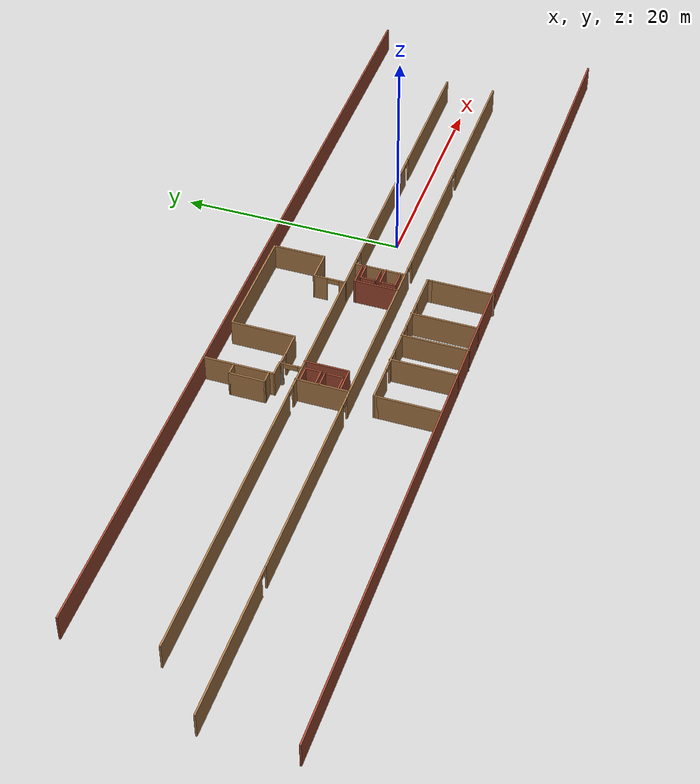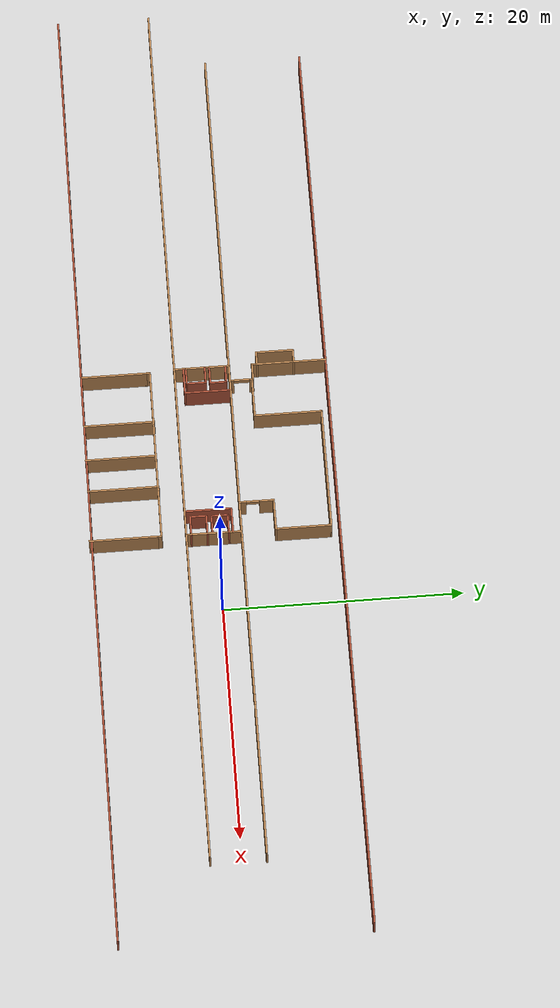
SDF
<sdf version="1.6">
 <model name="third_floor">
  <pose>-4.00866 -0.044756 0 0 -0 0</pose>
  <link name="Wall_104">
   <collision name="Wall_104_Collision">
    <geometry><box><size>4.7023 0.15 2.5</size></box></geometry>
    <pose>0 0 1.25 0 -0 0</pose>
   </collision>
   <visual name="Wall_104_Visual">
    <pose>0 0 1.25 0 -0 0</pose>
    <geometry><box><size>4.7023 0.15 2.5</size></box></geometry>
    <material>
     <script><uri>file://media/materials/scripts/gazebo.material</uri><name>Gazebo/Wood</name></script>
     <ambient>1 1 1 1</ambient>
    </material>
   </visual>
   <pose>-1.90234 -0.212 0 0 0 -1.57315</pose>
  </link>
  <link name="Wall_112">
   <collision name="Wall_112_Collision">
    <geometry><box><size>2.25 0.15 2.5</size></box></geometry>
    <pose>0 0 1.25 0 -0 0</pose>
   </collision>
   <visual name="Wall_112_Visual">
    <pose>0 0 1.25 0 -0 0</pose>
    <geometry><box><size>2.25 0.15 2.5</size></box></geometry>
    <material>
     <script><uri>file://media/materials/scripts/gazebo.material</uri><name>Gazebo/Bricks</name></script>
     <ambient>1 1 1 1</ambient>
    </material>
   </visual>
   <pose>-2.9577 1.34421 0 0 -0 3.14159</pose>
  </link>
  <link name="Wall_113">
   <collision name="Wall_113_Collision">
    <geometry><box><size>4 0.15 2.5</size></box></geometry>
    <pose>0 0 1.25 0 -0 0</pose>
   </collision>
   <visual name="Wall_113_Visual">
    <pose>0 0 1.25 0 -0 0</pose>
    <geometry><box><size>4 0.15 2.5</size></box></geometry>
    <material>
     <script><uri>file://media/materials/scripts/gazebo.material</uri><name>Gazebo/Bricks</name></script>
     <ambient>1 1 1 1</ambient>
    </material>
   </visual>
   <pose>-4.00769 -0.580789 0 0 0 -1.5708</pose>
  </link>
  <link name="Wall_115">
   <collision name="Wall_115_Collision">
    <geometry><box><size>1.75 0.15 2.5</size></box></geometry>
    <pose>0 0 1.25 0 -0 0</pose>
   </collision>
   <visual name="Wall_115_Visual">
    <pose>0 0 1.25 0 -0 0</pose>
    <geometry><box><size>1.75 0.15 2.5</size></box></geometry>
    <material>
     <script><uri>file://media/materials/scripts/gazebo.material</uri><name>Gazebo/Bricks</name></script>
     <ambient>1 1 1 1</ambient>
    </material>
   </visual>
   <pose>-2.68443 -0.772627 0 0 -0 3.14159</pose>
  </link>
  <link name="Wall_116">
   <collision name="Wall_116_Collision">
    <geometry><box><size>1.5 0.15 2.5</size></box></geometry>
    <pose>0 0 1.25 0 -0 0</pose>
   </collision>
   <visual name="Wall_116_Visual">
    <pose>0 0 1.25 0 -0 0</pose>
    <geometry><box><size>1.5 0.15 2.5</size></box></geometry>
    <material>
     <script><uri>file://media/materials/scripts/gazebo.material</uri><name>Gazebo/Bricks</name></script>
     <ambient>1 1 1 1</ambient>
    </material>
   </visual>
   <pose>-3.48443 -1.44763 0 0 0 -1.5708</pose>
  </link>
  <link name="Wall_117">
   <collision name="Wall_117_Collision">
    <geometry><box><size>1.75 0.15 2.5</size></box></geometry>
    <pose>0 0 1.25 0 -0 0</pose>
   </collision>
   <visual name="Wall_117_Visual">
    <pose>0 0 1.25 0 -0 0</pose>
    <geometry><box><size>1.75 0.15 2.5</size></box></geometry>
    <material>
     <script><uri>file://media/materials/scripts/gazebo.material</uri><name>Gazebo/Bricks</name></script>
     <ambient>1 1 1 1</ambient>
    </material>
   </visual>
   <pose>-2.68443 -2.12263 0 0 -0 0</pose>
  </link>
  <link name="Wall_119">
   <collision name="Wall_119_Collision">
    <geometry><box><size>1.67343 0.15 2.5</size></box></geometry>
    <pose>0 0 1.25 0 -0 0</pose>
   </collision>
   <visual name="Wall_119_Visual">
    <pose>0 0 1.25 0 -0 0</pose>
    <geometry><box><size>1.67343 0.15 2.5</size></box></geometry>
    <material>
     <script><uri>file://media/materials/scripts/gazebo.material</uri><name>Gazebo/Bricks</name></script>
     <ambient>1 1 1 1</ambient>
    </material>
   </visual>
   <pose>-2.67619 -0.351698 0 0 0 -3.13869</pose>
  </link>
  <link name="Wall_120">
   <collision name="Wall_120_Collision">
    <geometry><box><size>1.5 0.15 2.5</size></box></geometry>
    <pose>0 0 1.25 0 -0 0</pose>
   </collision>
   <visual name="Wall_120_Visual">
    <pose>0 0 1.25 0 -0 0</pose>
    <geometry><box><size>1.5 0.15 2.5</size></box></geometry>
    <material>
     <script><uri>file://media/materials/scripts/gazebo.material</uri><name>Gazebo/Bricks</name></script>
     <ambient>1 1 1 1</ambient>
    </material>
   </visual>
   <pose>-3.43791 0.321088 0 0 -0 1.5708</pose>
  </link>
  <link name="Wall_129">
   <collision name="Wall_129_Collision">
    <geometry><box><size>1.69095 0.15 2.5</size></box></geometry>
    <pose>0 0 1.25 0 -0 0</pose>
   </collision>
   <visual name="Wall_129_Visual">
    <pose>0 0 1.25 0 -0 0</pose>
    <geometry><box><size>1.69095 0.15 2.5</size></box></geometry>
    <material>
     <script><uri>file://media/materials/scripts/gazebo.material</uri><name>Gazebo/Bricks</name></script>
     <ambient>1 1 1 1</ambient>
    </material>
   </visual>
   <pose>-2.66745 1.00541 0 0 -0 0.012104</pose>
  </link>
  <link name="Wall_132">
   <collision name="Wall_132_Collision">
    <geometry><box><size>4.75 0.15 2.5</size></box></geometry>
    <pose>0 0 1.25 0 -0 0</pose>
   </collision>
   <visual name="Wall_132_Visual">
    <pose>0 0 1.25 0 -0 0</pose>
    <geometry><box><size>4.75 0.15 2.5</size></box></geometry>
    <material>
     <script><uri>file://media/materials/scripts/gazebo.material</uri><name>Gazebo/Wood</name></script>
     <ambient>1 1 1 1</ambient>
    </material>
   </visual>
   <pose>-16.9641 -0.197269 0 0 0 -1.5708</pose>
  </link>
  <link name="Wall_150">
   <collision name="Wall_150_Collision">
    <geometry><box><size>1.5 0.15 2.5</size></box></geometry>
    <pose>0 0 1.25 0 -0 0</pose>
   </collision>
   <visual name="Wall_150_Visual">
    <pose>0 0 1.25 0 -0 0</pose>
    <geometry><box><size>1.5 0.15 2.5</size></box></geometry>
    <material>
     <script><uri>file://media/materials/scripts/gazebo.material</uri><name>Gazebo/Bricks</name></script>
     <ambient>1 1 1 1</ambient>
    </material>
   </visual>
   <pose>-16.1961 0.404608 0 0 -0 0</pose>
  </link>
  <link name="Wall_151">
   <collision name="Wall_151_Collision">
    <geometry><box><size>1.5 0.15 2.5</size></box></geometry>
    <pose>0 0 1.25 0 -0 0</pose>
   </collision>
   <visual name="Wall_151_Visual">
    <pose>0 0 1.25 0 -0 0</pose>
    <geometry><box><size>1.5 0.15 2.5</size></box></geometry>
    <material>
     <script><uri>file://media/materials/scripts/gazebo.material</uri><name>Gazebo/Bricks</name></script>
     <ambient>1 1 1 1</ambient>
    </material>
   </visual>
   <pose>-15.5211 1.07961 0 0 -0 1.5708</pose>
  </link>
  <link name="Wall_152">
   <collision name="Wall_152_Collision">
    <geometry><box><size>1.5 0.15 2.5</size></box></geometry>
    <pose>0 0 1.25 0 -0 0</pose>
   </collision>
   <visual name="Wall_152_Visual">
    <pose>0 0 1.25 0 -0 0</pose>
    <geometry><box><size>1.5 0.15 2.5</size></box></geometry>
    <material>
     <script><uri>file://media/materials/scripts/gazebo.material</uri><name>Gazebo/Bricks</name></script>
     <ambient>1 1 1 1</ambient>
    </material>
   </visual>
   <pose>-16.1961 1.75461 0 0 -0 3.14159</pose>
  </link>
  <link name="Wall_154">
   <collision name="Wall_154_Collision">
    <geometry><box><size>1.5 0.15 2.5</size></box></geometry>
    <pose>0 0 1.25 0 -0 0</pose>
   </collision>
   <visual name="Wall_154_Visual">
    <pose>0 0 1.25 0 -0 0</pose>
    <geometry><box><size>1.5 0.15 2.5</size></box></geometry>
    <material>
     <script><uri>file://media/materials/scripts/gazebo.material</uri><name>Gazebo/Bricks</name></script>
     <ambient>1 1 1 1</ambient>
    </material>
   </visual>
   <pose>-16.2658 0.032417 0 0 -0 0</pose>
  </link>
  <link name="Wall_155">
   <collision name="Wall_155_Collision">
    <geometry><box><size>1.75 0.15 2.5</size></box></geometry>
    <pose>0 0 1.25 0 -0 0</pose>
   </collision>
   <visual name="Wall_155_Visual">
    <pose>0 0 1.25 0 -0 0</pose>
    <geometry><box><size>1.75 0.15 2.5</size></box></geometry>
    <material>
     <script><uri>file://media/materials/scripts/gazebo.material</uri><name>Gazebo/Bricks</name></script>
     <ambient>1 1 1 1</ambient>
    </material>
   </visual>
   <pose>-15.5908 -0.767583 0 0 0 -1.5708</pose>
  </link>
  <link name="Wall_156">
   <collision name="Wall_156_Collision">
    <geometry><box><size>1.5 0.15 2.5</size></box></geometry>
    <pose>0 0 1.25 0 -0 0</pose>
   </collision>
   <visual name="Wall_156_Visual">
    <pose>0 0 1.25 0 -0 0</pose>
    <geometry><box><size>1.5 0.15 2.5</size></box></geometry>
    <material>
     <script><uri>file://media/materials/scripts/gazebo.material</uri><name>Gazebo/Bricks</name></script>
     <ambient>1 1 1 1</ambient>
    </material>
   </visual>
   <pose>-16.2658 -1.56758 0 0 -0 3.14159</pose>
  </link>
  <link name="Wall_158">
   <collision name="Wall_158_Collision">
    <geometry><box><size>4 0.15 2.5</size></box></geometry>
    <pose>0 0 1.25 0 -0 0</pose>
   </collision>
   <visual name="Wall_158_Visual">
    <pose>0 0 1.25 0 -0 0</pose>
    <geometry><box><size>4 0.15 2.5</size></box></geometry>
    <material>
     <script><uri>file://media/materials/scripts/gazebo.material</uri><name>Gazebo/Bricks</name></script>
     <ambient>1 1 1 1</ambient>
    </material>
   </visual>
   <pose>-14.7542 0.154469 0 0 0 -1.5708</pose>
  </link>
  <link name="Wall_159">
   <collision name="Wall_159_Collision">
    <geometry><box><size>2.25 0.15 2.5</size></box></geometry>
    <pose>0 0 1.25 0 -0 0</pose>
   </collision>
   <visual name="Wall_159_Visual">
    <pose>0 0 1.25 0 -0 0</pose>
    <geometry><box><size>2.25 0.15 2.5</size></box></geometry>
    <material>
     <script><uri>file://media/materials/scripts/gazebo.material</uri><name>Gazebo/Bricks</name></script>
     <ambient>1 1 1 1</ambient>
    </material>
   </visual>
   <pose>-15.8042 -1.77053 0 0 -0 3.14159</pose>
  </link>
  <link name="Wall_189">
   <collision name="Wall_189_Collision">
    <geometry><box><size>10.5 0.15 2.5</size></box></geometry>
    <pose>0 0 1.25 0 -0 0</pose>
   </collision>
   <visual name="Wall_189_Visual">
    <pose>0 0 1.25 0 -0 0</pose>
    <geometry><box><size>10.5 0.15 2.5</size></box></geometry>
    <material>
     <script><uri>file://media/materials/scripts/gazebo.material</uri><name>Gazebo/Wood</name></script>
     <ambient>1 1 1 1</ambient>
    </material>
   </visual>
   <pose>-7.06966 9.51013 0 0 -0 0</pose>
  </link>
  <link name="Wall_190">
   <collision name="Wall_190_Collision">
    <geometry><box><size>4.75 0.15 2.5</size></box></geometry>
    <pose>0 0 1.25 0 -0 0</pose>
   </collision>
   <visual name="Wall_190_Visual">
    <pose>0 0 1.25 0 -0 0</pose>
    <geometry><box><size>4.75 0.15 2.5</size></box></geometry>
    <material>
     <script><uri>file://media/materials/scripts/gazebo.material</uri><name>Gazebo/Wood</name></script>
     <ambient>1 1 1 1</ambient>
    </material>
   </visual>
   <pose>-1.89466 7.21012 0 0 0 -1.5708</pose>
  </link>
  <link name="Wall_191">
   <collision name="Wall_191_Collision">
    <geometry><box><size>2.75 0.15 2.5</size></box></geometry>
    <pose>0 0 1.25 0 -0 0</pose>
   </collision>
   <visual name="Wall_191_Visual">
    <pose>0 0 1.25 0 -0 0</pose>
    <geometry><box><size>2.75 0.15 2.5</size></box></geometry>
    <material>
     <script><uri>file://media/materials/scripts/gazebo.material</uri><name>Gazebo/Wood</name></script>
     <ambient>1 1 1 1</ambient>
    </material>
   </visual>
   <pose>-3.19466 4.91013 0 0 -0 3.14159</pose>
  </link>
  <link name="Wall_192">
   <pose>-4.49466 3.48513 0 0 0 -1.5708</pose>
   <visual name="Wall_192_Visual_0">
    <pose>-0.857851 0 1.25 0 -0 0</pose>
    <geometry><box><size>1.2843 0.15 2.5</size></box></geometry>
    <material>
     <script><uri>file://media/materials/scripts/gazebo.material</uri><name>Gazebo/Wood</name></script>
     <ambient>1 1 1 1</ambient>
    </material>
   </visual>
   <collision name="Wall_192_Collision_0">
    <geometry><box><size>1.2843 0.15 2.5</size></box></geometry>
    <pose>-0.857851 0 1.25 0 -0 0</pose>
   </collision>
   <visual name="Wall_192_Visual_1">
    <pose>1.18497 0 1.25 0 -0 0</pose>
    <geometry><box><size>0.63007 0.15 2.5</size></box></geometry>
    <material>
     <script><uri>file://media/materials/scripts/gazebo.material</uri><name>Gazebo/Wood</name></script>
     <ambient>1 1 1 1</ambient>
    </material>
   </visual>
   <collision name="Wall_192_Collision_1">
    <geometry><box><size>0.63007 0.15 2.5</size></box></geometry>
    <pose>1.18497 0 1.25 0 -0 0</pose>
   </collision>
   <visual name="Wall_192_Visual_2">
    <pose>0.327114 0 2.25 0 -0 0</pose>
    <geometry><box><size>1.08563 0.15 0.5</size></box></geometry>
    <material>
     <script><uri>file://media/materials/scripts/gazebo.material</uri><name>Gazebo/Wood</name></script>
     <ambient>1 1 1 1</ambient>
    </material>
   </visual>
   <collision name="Wall_192_Collision_2">
    <geometry><box><size>1.08563 0.15 0.5</size></box></geometry>
    <pose>0.327114 0 2.25 0 -0 0</pose>
   </collision>
  </link>
  <link name="Wall_194">
   <collision name="Wall_194_Collision">
    <geometry><box><size>6.25 0.15 2.5</size></box></geometry>
    <pose>0 0 1.25 0 -0 0</pose>
   </collision>
   <visual name="Wall_194_Visual">
    <pose>0 0 1.25 0 -0 0</pose>
    <geometry><box><size>6.25 0.15 2.5</size></box></geometry>
    <material>
     <script><uri>file://media/materials/scripts/gazebo.material</uri><name>Gazebo/Wood</name></script>
     <ambient>1 1 1 1</ambient>
    </material>
   </visual>
   <pose>-16.9475 7.17894 0 0 0 -1.5708</pose>
  </link>
  <link name="Wall_196">
   <collision name="Wall_196_Collision">
    <geometry><box><size>5.75 0.15 2.5</size></box></geometry>
    <pose>0 0 1.25 0 -0 0</pose>
   </collision>
   <visual name="Wall_196_Visual">
    <pose>0 0 1.25 0 -0 0</pose>
    <geometry><box><size>5.75 0.15 2.5</size></box></geometry>
    <material>
     <script><uri>file://media/materials/scripts/gazebo.material</uri><name>Gazebo/Wood</name></script>
     <ambient>1 1 1 1</ambient>
    </material>
   </visual>
   <pose>-12.2447 6.71012 0 0 -0 1.5708</pose>
  </link>
  <link name="Wall_198">
   <pose>-13.9197 3.91012 0 0 -0 3.14159</pose>
   <visual name="Wall_198_Visual_0">
    <pose>-0.603318 0 1.25 0 -0 0</pose>
    <geometry><box><size>2.29336 0.15 2.5</size></box></geometry>
    <material>
     <script><uri>file://media/materials/scripts/gazebo.material</uri><name>Gazebo/Wood</name></script>
     <ambient>1 1 1 1</ambient>
    </material>
   </visual>
   <collision name="Wall_198_Collision_0">
    <geometry><box><size>2.29336 0.15 2.5</size></box></geometry>
    <pose>-0.603318 0 1.25 0 -0 0</pose>
   </collision>
   <visual name="Wall_198_Visual_1">
    <pose>1.59668 0 1.25 0 -0 0</pose>
    <geometry><box><size>0.306636 0.15 2.5</size></box></geometry>
    <material>
     <script><uri>file://media/materials/scripts/gazebo.material</uri><name>Gazebo/Wood</name></script>
     <ambient>1 1 1 1</ambient>
    </material>
   </visual>
   <collision name="Wall_198_Collision_1">
    <geometry><box><size>0.306636 0.15 2.5</size></box></geometry>
    <pose>1.59668 0 1.25 0 -0 0</pose>
   </collision>
   <visual name="Wall_198_Visual_2">
    <pose>0.993364 0 2.25 0 -0 0</pose>
    <geometry><box><size>0.9 0.15 0.5</size></box></geometry>
    <material>
     <script><uri>file://media/materials/scripts/gazebo.material</uri><name>Gazebo/Wood</name></script>
     <ambient>1 1 1 1</ambient>
    </material>
   </visual>
   <collision name="Wall_198_Collision_2">
    <geometry><box><size>0.9 0.15 0.5</size></box></geometry>
    <pose>0.993364 0 2.25 0 -0 0</pose>
   </collision>
  </link>
  <link name="Wall_199">
   <collision name="Wall_199_Collision">
    <geometry><box><size>0.25 0.15 2.5</size></box></geometry>
    <pose>0 0 1.25 0 -0 0</pose>
   </collision>
   <visual name="Wall_199_Visual">
    <pose>0 0 1.25 0 -0 0</pose>
    <geometry><box><size>0.25 0.15 2.5</size></box></geometry>
    <material>
     <script><uri>file://media/materials/scripts/gazebo.material</uri><name>Gazebo/Grey</name></script>
     <ambient>1 1 1 1</ambient>
    </material>
   </visual>
   <pose>-15.5947 3.96013 0 0 -0 1.5708</pose>
  </link>
  <link name="Wall_200">
   <collision name="Wall_200_Collision">
    <geometry><box><size>1.5 0.15 2.5</size></box></geometry>
    <pose>0 0 1.25 0 -0 0</pose>
   </collision>
   <visual name="Wall_200_Visual">
    <pose>0 0 1.25 0 -0 0</pose>
    <geometry><box><size>1.5 0.15 2.5</size></box></geometry>
    <material>
     <script><uri>file://media/materials/scripts/gazebo.material</uri><name>Gazebo/Wood</name></script>
     <ambient>1 1 1 1</ambient>
    </material>
   </visual>
   <pose>-16.2697 4.01013 0 0 -0 3.14159</pose>
  </link>
  <link name="Wall_203">
   <pose>-15.5947 3.08513 0 0 0 -1.5708</pose>
   <visual name="Wall_203_Visual_0">
    <pose>-0.802694 0 1.25 0 -0 0</pose>
    <geometry><box><size>0.394611 0.15 2.5</size></box></geometry>
    <material>
     <script><uri>file://media/materials/scripts/gazebo.material</uri><name>Gazebo/Wood</name></script>
     <ambient>1 1 1 1</ambient>
    </material>
   </visual>
   <collision name="Wall_203_Collision_0">
    <geometry><box><size>0.394611 0.15 2.5</size></box></geometry>
    <pose>-0.802694 0 1.25 0 -0 0</pose>
   </collision>
   <visual name="Wall_203_Visual_1">
    <pose>0.84325 0 1.25 0 -0 0</pose>
    <geometry><box><size>0.3135 0.15 2.5</size></box></geometry>
    <material>
     <script><uri>file://media/materials/scripts/gazebo.material</uri><name>Gazebo/Wood</name></script>
     <ambient>1 1 1 1</ambient>
    </material>
   </visual>
   <collision name="Wall_203_Collision_1">
    <geometry><box><size>0.3135 0.15 2.5</size></box></geometry>
    <pose>0.84325 0 1.25 0 -0 0</pose>
   </collision>
   <visual name="Wall_203_Visual_2">
    <pose>0.040556 0 2.25 0 -0 0</pose>
    <geometry><box><size>1.29189 0.15 0.5</size></box></geometry>
    <material>
     <script><uri>file://media/materials/scripts/gazebo.material</uri><name>Gazebo/Wood</name></script>
     <ambient>1 1 1 1</ambient>
    </material>
   </visual>
   <collision name="Wall_203_Collision_2">
    <geometry><box><size>1.29189 0.15 0.5</size></box></geometry>
    <pose>0.040556 0 2.25 0 -0 0</pose>
   </collision>
  </link>
  <link name="Wall_225">
   <collision name="Wall_225_Collision">
    <geometry><box><size>1.25 0.15 2.5</size></box></geometry>
    <pose>0 0 1.25 0 -0 0</pose>
   </collision>
   <visual name="Wall_225_Visual">
    <pose>0 0 1.25 0 -0 0</pose>
    <geometry><box><size>1.25 0.15 2.5</size></box></geometry>
    <material>
     <script><uri>file://media/materials/scripts/gazebo.material</uri><name>Gazebo/Wood</name></script>
     <ambient>1 1 1 1</ambient>
    </material>
   </visual>
   <pose>-17.4764 4.433 0 0 -0 3.14159</pose>
  </link>
  <link name="Wall_226">
   <collision name="Wall_226_Collision">
    <geometry><box><size>3.25 0.15 2.5</size></box></geometry>
    <pose>0 0 1.25 0 -0 0</pose>
   </collision>
   <visual name="Wall_226_Visual">
    <pose>0 0 1.25 0 -0 0</pose>
    <geometry><box><size>3.25 0.15 2.5</size></box></geometry>
    <material>
     <script><uri>file://media/materials/scripts/gazebo.material</uri><name>Gazebo/Wood</name></script>
     <ambient>1 1 1 1</ambient>
    </material>
   </visual>
   <pose>-18.0264 5.983 0 0 -0 1.5708</pose>
  </link>
  <link name="Wall_227">
   <collision name="Wall_227_Collision">
    <geometry><box><size>1.25 0.15 2.5</size></box></geometry>
    <pose>0 0 1.25 0 -0 0</pose>
   </collision>
   <visual name="Wall_227_Visual">
    <pose>0 0 1.25 0 -0 0</pose>
    <geometry><box><size>1.25 0.15 2.5</size></box></geometry>
    <material>
     <script><uri>file://media/materials/scripts/gazebo.material</uri><name>Gazebo/Wood</name></script>
     <ambient>1 1 1 1</ambient>
    </material>
   </visual>
   <pose>-17.4764 7.533 0 0 -0 0</pose>
  </link>
  <link name="Wall_24">
   <pose>-9.80257 2.06111 0 0 -0 0</pose>
   <visual name="Wall_24_Visual_0">
    <pose>-22.4583 0 1.25 0 -0 0</pose>
    <geometry><box><size>27.0834 0.15 2.5</size></box></geometry>
    <material>
     <script><uri>file://media/materials/scripts/gazebo.material</uri><name>Gazebo/Wood</name></script>
     <ambient>1 1 1 1</ambient>
    </material>
   </visual>
   <collision name="Wall_24_Collision_0">
    <geometry><box><size>27.0834 0.15 2.5</size></box></geometry>
    <pose>-22.4583 0 1.25 0 -0 0</pose>
   </collision>
   <visual name="Wall_24_Visual_1">
    <pose>0.222618 0 1.25 0 -0 0</pose>
    <geometry><box><size>16.4785 0.15 2.5</size></box></geometry>
    <material>
     <script><uri>file://media/materials/scripts/gazebo.material</uri><name>Gazebo/Wood</name></script>
     <ambient>1 1 1 1</ambient>
    </material>
   </visual>
   <collision name="Wall_24_Collision_1">
    <geometry><box><size>16.4785 0.15 2.5</size></box></geometry>
    <pose>0.222618 0 1.25 0 -0 0</pose>
   </collision>
   <visual name="Wall_24_Visual_2">
    <pose>15.8561 0 1.25 0 -0 0</pose>
    <geometry><box><size>12.9885 0.15 2.5</size></box></geometry>
    <material>
     <script><uri>file://media/materials/scripts/gazebo.material</uri><name>Gazebo/Wood</name></script>
     <ambient>1 1 1 1</ambient>
    </material>
   </visual>
   <collision name="Wall_24_Collision_2">
    <geometry><box><size>12.9885 0.15 2.5</size></box></geometry>
    <pose>15.8561 0 1.25 0 -0 0</pose>
   </collision>
   <visual name="Wall_24_Visual_3">
    <pose>29.6252 0 1.25 0 -0 0</pose>
    <geometry><box><size>12.7496 0.15 2.5</size></box></geometry>
    <material>
     <script><uri>file://media/materials/scripts/gazebo.material</uri><name>Gazebo/Wood</name></script>
     <ambient>1 1 1 1</ambient>
    </material>
   </visual>
   <collision name="Wall_24_Collision_3">
    <geometry><box><size>12.7496 0.15 2.5</size></box></geometry>
    <pose>29.6252 0 1.25 0 -0 0</pose>
   </collision>
   <visual name="Wall_24_Visual_4">
    <pose>-8.46665 0 2.25 0 -0 0</pose>
    <geometry><box><size>0.9 0.15 0.5</size></box></geometry>
    <material>
     <script><uri>file://media/materials/scripts/gazebo.material</uri><name>Gazebo/Wood</name></script>
     <ambient>1 1 1 1</ambient>
    </material>
   </visual>
   <collision name="Wall_24_Collision_4">
    <geometry><box><size>0.9 0.15 0.5</size></box></geometry>
    <pose>-8.46665 0 2.25 0 -0 0</pose>
   </collision>
   <visual name="Wall_24_Visual_5">
    <pose>8.91189 0 2.25 0 -0 0</pose>
    <geometry><box><size>0.9 0.15 0.5</size></box></geometry>
    <material>
     <script><uri>file://media/materials/scripts/gazebo.material</uri><name>Gazebo/Wood</name></script>
     <ambient>1 1 1 1</ambient>
    </material>
   </visual>
   <collision name="Wall_24_Collision_5">
    <geometry><box><size>0.9 0.15 0.5</size></box></geometry>
    <pose>8.91189 0 2.25 0 -0 0</pose>
   </collision>
   <visual name="Wall_24_Visual_6">
    <pose>22.8004 0 2.25 0 -0 0</pose>
    <geometry><box><size>0.9 0.15 0.5</size></box></geometry>
    <material>
     <script><uri>file://media/materials/scripts/gazebo.material</uri><name>Gazebo/Wood</name></script>
     <ambient>1 1 1 1</ambient>
    </material>
   </visual>
   <collision name="Wall_24_Collision_6">
    <geometry><box><size>0.9 0.15 0.5</size></box></geometry>
    <pose>22.8004 0 2.25 0 -0 0</pose>
   </collision>
  </link>
  <link name="Wall_32">
   <pose>-12.1776 -2.53889 0 0 -0 3.14159</pose>
   <visual name="Wall_32_Visual_0">
    <pose>-31.9729 0 1.25 0 -0 0</pose>
    <geometry><box><size>12.8042 0.15 2.5</size></box></geometry>
    <material>
     <script><uri>file://media/materials/scripts/gazebo.material</uri><name>Gazebo/Wood</name></script>
     <ambient>1 1 1 1</ambient>
    </material>
   </visual>
   <collision name="Wall_32_Collision_0">
    <geometry><box><size>12.8042 0.15 2.5</size></box></geometry>
    <pose>-31.9729 0 1.25 0 -0 0</pose>
   </collision>
   <visual name="Wall_32_Visual_1">
    <pose>-18.345 0 1.25 0 -0 0</pose>
    <geometry><box><size>12.6516 0.15 2.5</size></box></geometry>
    <material>
     <script><uri>file://media/materials/scripts/gazebo.material</uri><name>Gazebo/Wood</name></script>
     <ambient>1 1 1 1</ambient>
    </material>
   </visual>
   <collision name="Wall_32_Collision_1">
    <geometry><box><size>12.6516 0.15 2.5</size></box></geometry>
    <pose>-18.345 0 1.25 0 -0 0</pose>
   </collision>
   <visual name="Wall_32_Visual_2">
    <pose>-2.78583 0 1.25 0 -0 0</pose>
    <geometry><box><size>16.6668 0.15 2.5</size></box></geometry>
    <material>
     <script><uri>file://media/materials/scripts/gazebo.material</uri><name>Gazebo/Wood</name></script>
     <ambient>1 1 1 1</ambient>
    </material>
   </visual>
   <collision name="Wall_32_Collision_2">
    <geometry><box><size>16.6668 0.15 2.5</size></box></geometry>
    <pose>-2.78583 0 1.25 0 -0 0</pose>
   </collision>
   <visual name="Wall_32_Visual_3">
    <pose>15.3573 0 1.25 0 -0 0</pose>
    <geometry><box><size>17.8196 0.15 2.5</size></box></geometry>
    <material>
     <script><uri>file://media/materials/scripts/gazebo.material</uri><name>Gazebo/Wood</name></script>
     <ambient>1 1 1 1</ambient>
    </material>
   </visual>
   <collision name="Wall_32_Collision_3">
    <geometry><box><size>17.8196 0.15 2.5</size></box></geometry>
    <pose>15.3573 0 1.25 0 -0 0</pose>
   </collision>
   <visual name="Wall_32_Visual_4">
    <pose>31.7711 0 1.25 0 -0 0</pose>
    <geometry><box><size>13.2079 0.15 2.5</size></box></geometry>
    <material>
     <script><uri>file://media/materials/scripts/gazebo.material</uri><name>Gazebo/Wood</name></script>
     <ambient>1 1 1 1</ambient>
    </material>
   </visual>
   <collision name="Wall_32_Collision_4">
    <geometry><box><size>13.2079 0.15 2.5</size></box></geometry>
    <pose>31.7711 0 1.25 0 -0 0</pose>
   </collision>
   <visual name="Wall_32_Visual_5">
    <pose>-25.1208 0 2.25 0 -0 0</pose>
    <geometry><box><size>0.9 0.15 0.5</size></box></geometry>
    <material>
     <script><uri>file://media/materials/scripts/gazebo.material</uri><name>Gazebo/Wood</name></script>
     <ambient>1 1 1 1</ambient>
    </material>
   </visual>
   <collision name="Wall_32_Collision_5">
    <geometry><box><size>0.9 0.15 0.5</size></box></geometry>
    <pose>-25.1208 0 2.25 0 -0 0</pose>
   </collision>
   <visual name="Wall_32_Visual_6">
    <pose>-11.5692 0 2.25 0 -0 0</pose>
    <geometry><box><size>0.9 0.15 0.5</size></box></geometry>
    <material>
     <script><uri>file://media/materials/scripts/gazebo.material</uri><name>Gazebo/Wood</name></script>
     <ambient>1 1 1 1</ambient>
    </material>
   </visual>
   <collision name="Wall_32_Collision_6">
    <geometry><box><size>0.9 0.15 0.5</size></box></geometry>
    <pose>-11.5692 0 2.25 0 -0 0</pose>
   </collision>
   <visual name="Wall_32_Visual_7">
    <pose>5.99754 0 2.25 0 -0 0</pose>
    <geometry><box><size>0.9 0.15 0.5</size></box></geometry>
    <material>
     <script><uri>file://media/materials/scripts/gazebo.material</uri><name>Gazebo/Wood</name></script>
     <ambient>1 1 1 1</ambient>
    </material>
   </visual>
   <collision name="Wall_32_Collision_7">
    <geometry><box><size>0.9 0.15 0.5</size></box></geometry>
    <pose>5.99754 0 2.25 0 -0 0</pose>
   </collision>
   <visual name="Wall_32_Visual_8">
    <pose>24.7171 0 2.25 0 -0 0</pose>
    <geometry><box><size>0.9 0.15 0.5</size></box></geometry>
    <material>
     <script><uri>file://media/materials/scripts/gazebo.material</uri><name>Gazebo/Wood</name></script>
     <ambient>1 1 1 1</ambient>
    </material>
   </visual>
   <collision name="Wall_32_Collision_8">
    <geometry><box><size>0.9 0.15 0.5</size></box></geometry>
    <pose>24.7171 0 2.25 0 -0 0</pose>
   </collision>
  </link>
  <link name="Wall_34">
   <collision name="Wall_34_Collision">
    <geometry><box><size>83.25 0.15 2.5</size></box></geometry>
    <pose>0 0 1.25 0 -0 0</pose>
   </collision>
   <visual name="Wall_34_Visual">
    <pose>0 0 1.25 0 -0 0</pose>
    <geometry><box><size>83.25 0.15 2.5</size></box></geometry>
    <material>
     <script><uri>file://media/materials/scripts/gazebo.material</uri><name>Gazebo/Bricks</name></script>
     <ambient>1 1 1 1</ambient>
    </material>
   </visual>
   <pose>-8.92757 -10.3889 0 0 -0 0</pose>
  </link>
  <link name="Wall_4">
   <collision name="Wall_4_Collision">
    <geometry><box><size>78.5 0.15 2.5</size></box></geometry>
    <pose>0 0 1.25 0 -0 0</pose>
   </collision>
   <visual name="Wall_4_Visual">
    <pose>0 0 1.25 0 -0 0</pose>
    <geometry><box><size>78.5 0.15 2.5</size></box></geometry>
    <material>
     <script><uri>file://media/materials/scripts/gazebo.material</uri><name>Gazebo/Bricks</name></script>
     <ambient>1 1 1 1</ambient>
    </material>
   </visual>
   <pose>-6.54093 10.2153 0 0 -0 0</pose>
  </link>
  <link name="Wall_62">
   <collision name="Wall_62_Collision">
    <geometry><box><size>0.5 0.15 2.5</size></box></geometry>
    <pose>0 0 1.25 0 -0 0</pose>
   </collision>
   <visual name="Wall_62_Visual">
    <pose>0 0 1.25 0 -0 0</pose>
    <geometry><box><size>0.5 0.15 2.5</size></box></geometry>
    <material>
     <script><uri>file://media/materials/scripts/gazebo.material</uri><name>Gazebo/Wood</name></script>
     <ambient>1 1 1 1</ambient>
    </material>
   </visual>
   <pose>-16.7852 -4.77004 0 0 -0 1.5708</pose>
  </link>
  <link name="Wall_63">
   <pose>-9.36022 -4.59504 0 0 -0 0</pose>
   <visual name="Wall_63_Visual_0">
    <pose>-5.84725 0 1.25 0 -0 0</pose>
    <geometry><box><size>3.3055 0.15 2.5</size></box></geometry>
    <material>
     <script><uri>file://media/materials/scripts/gazebo.material</uri><name>Gazebo/Wood</name></script>
     <ambient>1 1 1 1</ambient>
    </material>
   </visual>
   <collision name="Wall_63_Collision_0">
    <geometry><box><size>3.3055 0.15 2.5</size></box></geometry>
    <pose>-5.84725 0 1.25 0 -0 0</pose>
   </collision>
   <visual name="Wall_63_Visual_1">
    <pose>-2.99734 0 1.25 0 -0 0</pose>
    <geometry><box><size>0.594336 0.15 2.5</size></box></geometry>
    <material>
     <script><uri>file://media/materials/scripts/gazebo.material</uri><name>Gazebo/Wood</name></script>
     <ambient>1 1 1 1</ambient>
    </material>
   </visual>
   <collision name="Wall_63_Collision_1">
    <geometry><box><size>0.594336 0.15 2.5</size></box></geometry>
    <pose>-2.99734 0 1.25 0 -0 0</pose>
   </collision>
   <visual name="Wall_63_Visual_2">
    <pose>-0.672814 0 1.25 0 -0 0</pose>
    <geometry><box><size>2.25471 0.15 2.5</size></box></geometry>
    <material>
     <script><uri>file://media/materials/scripts/gazebo.material</uri><name>Gazebo/Wood</name></script>
     <ambient>1 1 1 1</ambient>
    </material>
   </visual>
   <collision name="Wall_63_Collision_2">
    <geometry><box><size>2.25471 0.15 2.5</size></box></geometry>
    <pose>-0.672814 0 1.25 0 -0 0</pose>
   </collision>
   <visual name="Wall_63_Visual_3">
    <pose>2.35144 0 1.25 0 -0 0</pose>
    <geometry><box><size>1.99379 0.15 2.5</size></box></geometry>
    <material>
     <script><uri>file://media/materials/scripts/gazebo.material</uri><name>Gazebo/Wood</name></script>
     <ambient>1 1 1 1</ambient>
    </material>
   </visual>
   <collision name="Wall_63_Collision_3">
    <geometry><box><size>1.99379 0.15 2.5</size></box></geometry>
    <pose>2.35144 0 1.25 0 -0 0</pose>
   </collision>
   <visual name="Wall_63_Visual_4">
    <pose>5.87417 0 1.25 0 -0 0</pose>
    <geometry><box><size>3.25167 0.15 2.5</size></box></geometry>
    <material>
     <script><uri>file://media/materials/scripts/gazebo.material</uri><name>Gazebo/Wood</name></script>
     <ambient>1 1 1 1</ambient>
    </material>
   </visual>
   <collision name="Wall_63_Collision_4">
    <geometry><box><size>3.25167 0.15 2.5</size></box></geometry>
    <pose>5.87417 0 1.25 0 -0 0</pose>
   </collision>
   <visual name="Wall_63_Visual_5">
    <pose>-3.74451 0 2.25 0 -0 0</pose>
    <geometry><box><size>0.9 0.15 0.5</size></box></geometry>
    <material>
     <script><uri>file://media/materials/scripts/gazebo.material</uri><name>Gazebo/Wood</name></script>
     <ambient>1 1 1 1</ambient>
    </material>
   </visual>
   <collision name="Wall_63_Collision_5">
    <geometry><box><size>0.9 0.15 0.5</size></box></geometry>
    <pose>-3.74451 0 2.25 0 -0 0</pose>
   </collision>
   <visual name="Wall_63_Visual_6">
    <pose>-2.25017 0 2.25 0 -0 0</pose>
    <geometry><box><size>0.9 0.15 0.5</size></box></geometry>
    <material>
     <script><uri>file://media/materials/scripts/gazebo.material</uri><name>Gazebo/Wood</name></script>
     <ambient>1 1 1 1</ambient>
    </material>
   </visual>
   <collision name="Wall_63_Collision_6">
    <geometry><box><size>0.9 0.15 0.5</size></box></geometry>
    <pose>-2.25017 0 2.25 0 -0 0</pose>
   </collision>
   <visual name="Wall_63_Visual_7">
    <pose>0.904541 0 2.25 0 -0 0</pose>
    <geometry><box><size>0.9 0.15 0.5</size></box></geometry>
    <material>
     <script><uri>file://media/materials/scripts/gazebo.material</uri><name>Gazebo/Wood</name></script>
     <ambient>1 1 1 1</ambient>
    </material>
   </visual>
   <collision name="Wall_63_Collision_7">
    <geometry><box><size>0.9 0.15 0.5</size></box></geometry>
    <pose>0.904541 0 2.25 0 -0 0</pose>
   </collision>
   <visual name="Wall_63_Visual_8">
    <pose>3.79833 0 2.25 0 -0 0</pose>
    <geometry><box><size>0.9 0.15 0.5</size></box></geometry>
    <material>
     <script><uri>file://media/materials/scripts/gazebo.material</uri><name>Gazebo/Wood</name></script>
     <ambient>1 1 1 1</ambient>
    </material>
   </visual>
   <collision name="Wall_63_Collision_8">
    <geometry><box><size>0.9 0.15 0.5</size></box></geometry>
    <pose>3.79833 0 2.25 0 -0 0</pose>
   </collision>
  </link>
  <link name="Wall_64">
   <collision name="Wall_64_Collision">
    <geometry><box><size>0.5 0.15 2.5</size></box></geometry>
    <pose>0 0 1.25 0 -0 0</pose>
   </collision>
   <visual name="Wall_64_Visual">
    <pose>0 0 1.25 0 -0 0</pose>
    <geometry><box><size>0.5 0.15 2.5</size></box></geometry>
    <material>
     <script><uri>file://media/materials/scripts/gazebo.material</uri><name>Gazebo/Wood</name></script>
     <ambient>1 1 1 1</ambient>
    </material>
   </visual>
   <pose>-1.93522 -4.77004 0 0 0 -1.5708</pose>
  </link>
  <link name="Wall_74">
   <collision name="Wall_74_Collision">
    <geometry><box><size>5.5 0.15 2.5</size></box></geometry>
    <pose>0 0 1.25 0 -0 0</pose>
   </collision>
   <visual name="Wall_74_Visual">
    <pose>0 0 1.25 0 -0 0</pose>
    <geometry><box><size>5.5 0.15 2.5</size></box></geometry>
    <material>
     <script><uri>file://media/materials/scripts/gazebo.material</uri><name>Gazebo/Wood</name></script>
     <ambient>1 1 1 1</ambient>
    </material>
   </visual>
   <pose>-16.7852 -7.62004 0 0 0 -1.5708</pose>
  </link>
  <link name="Wall_76">
   <collision name="Wall_76_Collision">
    <geometry><box><size>6 0.15 2.5</size></box></geometry>
    <pose>0 0 1.25 0 -0 0</pose>
   </collision>
   <visual name="Wall_76_Visual">
    <pose>0 0 1.25 0 -0 0</pose>
    <geometry><box><size>6 0.15 2.5</size></box></geometry>
    <material>
     <script><uri>file://media/materials/scripts/gazebo.material</uri><name>Gazebo/Wood</name></script>
     <ambient>1 1 1 1</ambient>
    </material>
   </visual>
   <pose>-12.3141 -7.46774 0 0 0 -1.5708</pose>
  </link>
  <link name="Wall_78">
   <collision name="Wall_78_Collision">
    <geometry><box><size>6 0.15 2.5</size></box></geometry>
    <pose>0 0 1.25 0 -0 0</pose>
   </collision>
   <visual name="Wall_78_Visual">
    <pose>0 0 1.25 0 -0 0</pose>
    <geometry><box><size>6 0.15 2.5</size></box></geometry>
    <material>
     <script><uri>file://media/materials/scripts/gazebo.material</uri><name>Gazebo/Wood</name></script>
     <ambient>1 1 1 1</ambient>
    </material>
   </visual>
   <pose>-9.21852 -7.50311 0 0 0 -1.5708</pose>
  </link>
  <link name="Wall_80">
   <collision name="Wall_80_Collision">
    <geometry><box><size>6 0.15 2.5</size></box></geometry>
    <pose>0 0 1.25 0 -0 0</pose>
   </collision>
   <visual name="Wall_80_Visual">
    <pose>0 0 1.25 0 -0 0</pose>
    <geometry><box><size>6 0.15 2.5</size></box></geometry>
    <material>
     <script><uri>file://media/materials/scripts/gazebo.material</uri><name>Gazebo/Wood</name></script>
     <ambient>1 1 1 1</ambient>
    </material>
   </visual>
   <pose>-6.40593 -7.46774 0 0 0 -1.5708</pose>
  </link>
  <link name="Wall_82">
   <collision name="Wall_82_Collision">
    <geometry><box><size>5.75 0.15 2.5</size></box></geometry>
    <pose>0 0 1.25 0 -0 0</pose>
   </collision>
   <visual name="Wall_82_Visual">
    <pose>0 0 1.25 0 -0 0</pose>
    <geometry><box><size>5.75 0.15 2.5</size></box></geometry>
    <material>
     <script><uri>file://media/materials/scripts/gazebo.material</uri><name>Gazebo/Wood</name></script>
     <ambient>1 1 1 1</ambient>
    </material>
   </visual>
   <pose>-1.93522 -7.74504 0 0 0 -1.5708</pose>
  </link>
  <static>1</static>
 </model>
</sdf>
